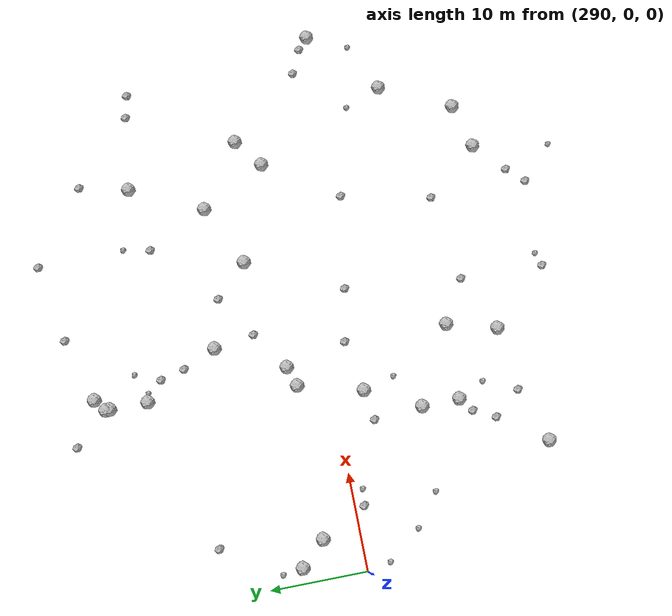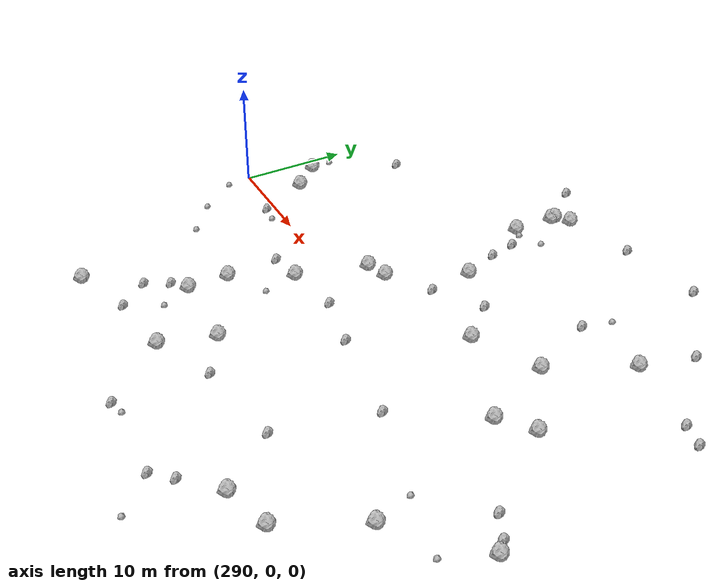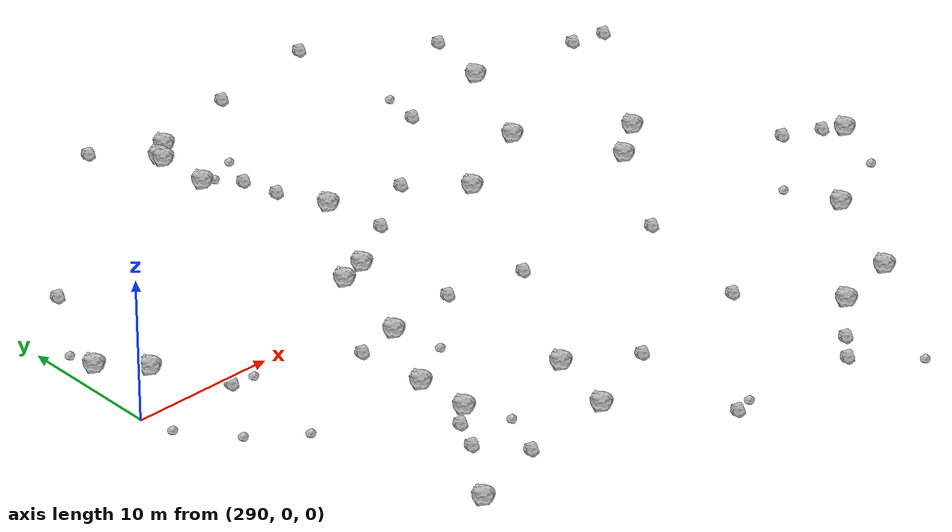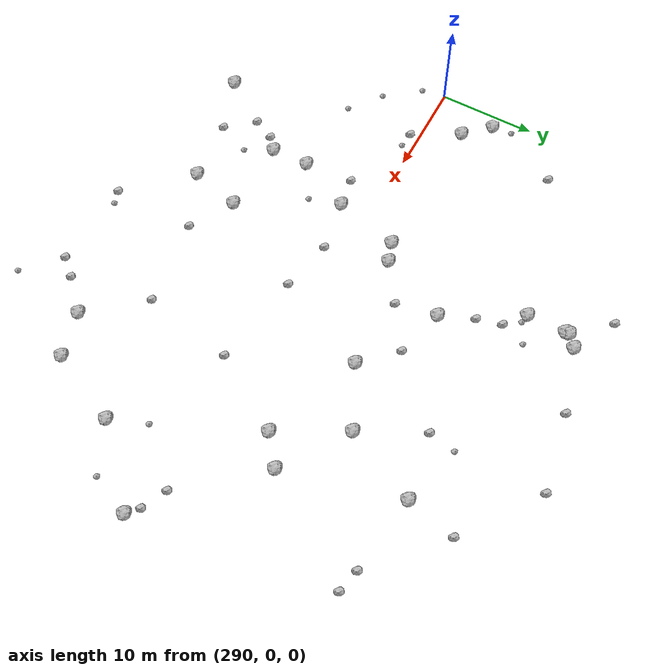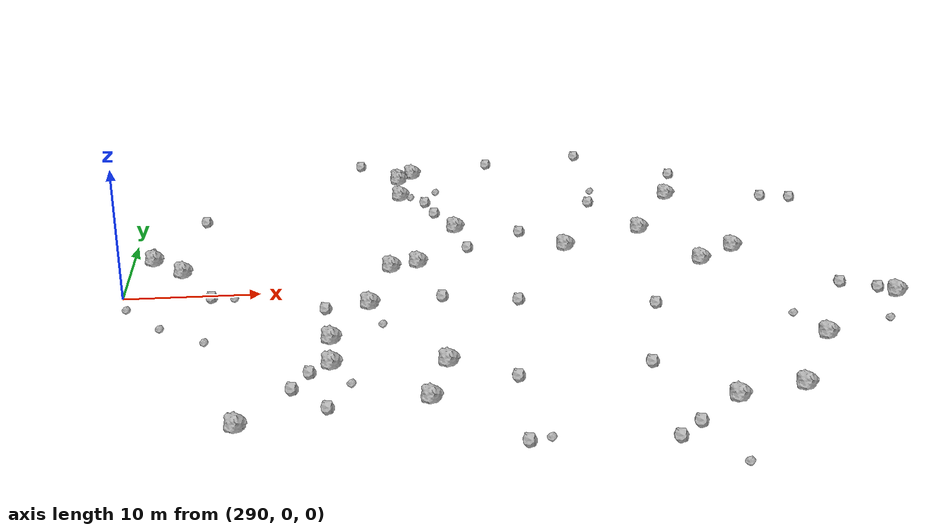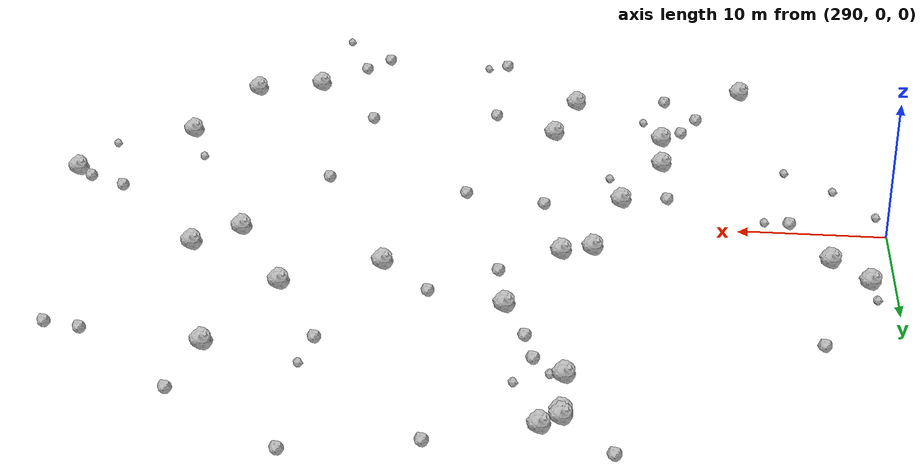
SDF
<sdf version="1.6">
 <world name="default">
  <include><uri>model://sun</uri></include>
  <model name="rock1_8_3">
   <include><uri>model://rock1</uri><pose>308.00813359753374 -3.187387761317037 0.5 0 0 0</pose></include>
  </model>
  <model name="rock1_8_4">
   <include><uri>model://rock1</uri><pose>310.99982989097117 22.75849761466675 0.5 0 0 0</pose></include>
  </model>
  <model name="rock1_8_5">
   <include><uri>model://rock1</uri><pose>313.11790677831294 -12.95435799102571 0.5 0 0 0</pose></include>
  </model>
  <model name="rock1_8_6">
   <include><uri>model://rock1</uri><pose>339.7107557767021 -11.238881592399537 0.5 0 0 0</pose></include>
  </model>
  <model name="rock1_8_7">
   <include><uri>model://rock1</uri><pose>333.65522824359823 2.6999657780466038 0.5 0 0 0</pose></include>
  </model>
  <model name="rock1_8_8">
   <include><uri>model://rock1</uri><pose>299.38721224843886 -20.72889963945307 0.5 0 0 0</pose></include>
  </model>
  <model name="rock1_8_9">
   <include><uri>model://rock1</uri><pose>336.1331582308517 -18.580958607515917 0.5 0 0 0</pose></include>
  </model>
  <model name="rock1_8_10">
   <include><uri>model://rock1</uri><pose>311.84504835807536 4.140270520032679 0.5 0 0 0</pose></include>
  </model>
  <model name="rock1_8_11">
   <include><uri>model://rock1</uri><pose>309.7651905170427 3.4473063271507414 0.5 0 0 0</pose></include>
  </model>
  <model name="rock1_8_12">
   <include><uri>model://rock1</uri><pose>333.60327432733936 17.028898842880068 0.5 0 0 0</pose></include>
  </model>
  <model name="rock1_8_13">
   <include><uri>model://rock1</uri><pose>305.27915386188886 -12.624356242275088 0.5 0 0 0</pose></include>
  </model>
  <model name="rock1_8_14">
   <include><uri>model://rock1</uri><pose>311.00284128467575 18.802592759755797 0.5 0 0 0</pose></include>
  </model>
  <model name="rock1_8_15">
   <include><uri>model://rock1</uri><pose>291.6363394959519 6.360772544247567 0.5 0 0 0</pose></include>
  </model>
  <model name="rock1_8_16">
   <include><uri>model://rock1</uri><pose>323.5577789304534 6.460767236000386 0.5 0 0 0</pose></include>
  </model>
  <model name="rock1_8_17">
   <include><uri>model://rock1</uri><pose>305.2357780867176 -8.727962177162855 0.5 0 0 0</pose></include>
  </model>
  <model name="rock1_8_18">
   <include><uri>model://rock1</uri><pose>294.04364252529837 3.8359038840757265 0.5 0 0 0</pose></include>
  </model>
  <model name="rock1_8_19">
   <include><uri>model://rock1</uri><pose>346.77463513639077 -4.742301179356172 0.5 0 0 0</pose></include>
  </model>
  <model name="rock1_8_20">
   <include><uri>model://rock1</uri><pose>311.6987053895414 -18.070250590364015 0.5 0 0 0</pose></include>
  </model>
  <model name="rock1_8_21">
   <include><uri>model://rock1</uri><pose>329.9848285182422 9.519066900218206 0.5 0 0 0</pose></include>
  </model>
  <model name="rock1_8_22">
   <include><uri>model://rock1</uri><pose>312.23106405604335 24.158770901594913 0.5 0 0 0</pose></include>
  </model>
  <model name="rock1_8_23">
   <include><uri>model://rock1</uri><pose>310.9953072815937 23.169473670473046 0.5 0 0 0</pose></include>
  </model>
  <model name="rock1_8_24">
   <include><uri>model://rock1</uri><pose>315.16272701499054 11.10916441495229 0.5 0 0 0</pose></include>
  </model>
  <model name="rock1_8_25">
   <include><uri>model://rock1</uri><pose>331.42249340438383 -19.787996333045612 0.5 0 0 0</pose></include>
  </model>
  <model name="rock1_8_26">
   <include><uri>model://rock1</uri><pose>336.6406897955026 5.010147929801391 0.5 0 0 0</pose></include>
  </model>
  <model name="rock2_8_0">
   <include><uri>model://rock2</uri><pose>326.6933615772589 -14.290084250817474 0.3 0 0 0</pose></include>
  </model>
  <model name="rock2_8_1">
   <include><uri>model://rock2</uri><pose>303.8238686739279 -13.75474630104273 0.3 0 0 0</pose></include>
  </model>
  <model name="rock2_8_2">
   <include><uri>model://rock2</uri><pose>341.554497611452 16.03546242926815 0.3 0 0 0</pose></include>
  </model>
  <model name="rock2_8_3">
   <include><uri>model://rock2</uri><pose>318.8886351278332 26.215455038683785 0.3 0 0 0</pose></include>
  </model>
  <model name="rock2_8_4">
   <include><uri>model://rock2</uri><pose>320.2010998241955 9.806728145053278 0.3 0 0 0</pose></include>
  </model>
  <model name="rock2_8_5">
   <include><uri>model://rock2</uri><pose>312.98124757024516 17.11766081176615 0.3 0 0 0</pose></include>
  </model>
  <model name="rock2_8_6">
   <include><uri>model://rock2</uri><pose>343.9591847960104 15.504281311434625 0.3 0 0 0</pose></include>
  </model>
  <model name="rock2_8_7">
   <include><uri>model://rock2</uri><pose>326.59466085007614 -24.486563865933064 0.3 0 0 0</pose></include>
  </model>
  <model name="rock2_8_8">
   <include><uri>model://rock2</uri><pose>296.5099697790267 -0.892818791794209 0.3 0 0 0</pose></include>
  </model>
  <model name="rock2_8_9">
   <include><uri>model://rock2</uri><pose>305.0471478879534 -18.78060602918515 0.3 0 0 0</pose></include>
  </model>
  <model name="rock2_8_10">
   <include><uri>model://rock2</uri><pose>328.66540918443957 -4.925869576731877 0.3 0 0 0</pose></include>
  </model>
  <model name="rock2_8_11">
   <include><uri>model://rock2</uri><pose>327.09577056177505 27.72830708052026 0.3 0 0 0</pose></include>
  </model>
  <model name="rock2_8_12">
   <include><uri>model://rock2</uri><pose>304.81234261508746 -3.6686798854948606 0.3 0 0 0</pose></include>
  </model>
  <model name="rock2_8_13">
   <include><uri>model://rock2</uri><pose>334.7891628145289 22.166719012722197 0.3 0 0 0</pose></include>
  </model>
  <model name="rock2_8_14">
   <include><uri>model://rock2</uri><pose>317.31220768445684 -24.15696990575973 0.3 0 0 0</pose></include>
  </model>
  <model name="rock2_8_15">
   <include><uri>model://rock2</uri><pose>343.04482300935484 -2.516322472158137 0.3 0 0 0</pose></include>
  </model>
  <model name="rock2_8_16">
   <include><uri>model://rock2</uri><pose>313.302010527214 -2.2654049434506938 0.3 0 0 0</pose></include>
  </model>
  <model name="rock2_8_17">
   <include><uri>model://rock2</uri><pose>328.2328490144106 -22.73327477602649 0.3 0 0 0</pose></include>
  </model>
  <model name="rock2_8_18">
   <include><uri>model://rock2</uri><pose>345.59418313242844 -3.7023276834032686 0.3 0 0 0</pose></include>
  </model>
  <model name="rock2_8_19">
   <include><uri>model://rock2</uri><pose>302.71694897593375 -15.989494809511196 0.3 0 0 0</pose></include>
  </model>
  <model name="rock2_8_20">
   <include><uri>model://rock2</uri><pose>313.632290737569 14.588548505994481 0.3 0 0 0</pose></include>
  </model>
  <model name="rock2_8_21">
   <include><uri>model://rock2</uri><pose>295.0482275227442 14.251782130942573 0.3 0 0 0</pose></include>
  </model>
  <model name="rock2_8_22">
   <include><uri>model://rock2</uri><pose>307.7510488180632 26.669788782962186 0.3 0 0 0</pose></include>
  </model>
  <model name="rock2_8_23">
   <include><uri>model://rock2</uri><pose>315.819985818685 6.892594987121804 0.3 0 0 0</pose></include>
  </model>
  <model name="rock2_8_24">
   <include><uri>model://rock2</uri><pose>317.5460388624866 -15.517407049988485 0.3 0 0 0</pose></include>
  </model>
  <model name="rock2_8_25">
   <include><uri>model://rock2</uri><pose>326.6934651446831 15.887089031512438 0.3 0 0 0</pose></include>
  </model>
  <model name="rock2_8_26">
   <include><uri>model://rock2</uri><pose>318.79963293266223 -3.366699982409177 0.3 0 0 0</pose></include>
  </model>
  <model name="rock3_8_0">
   <include><uri>model://rock3</uri><pose>318.71597545438254 -23.784340960161558 0.2 0 0 0</pose></include>
  </model>
  <model name="rock3_8_1">
   <include><uri>model://rock3</uri><pose>293.2199705823803 -5.858501532710303 0.2 0 0 0</pose></include>
  </model>
  <model name="rock3_8_2">
   <include><uri>model://rock3</uri><pose>290.5196433484738 -2.4090218779588994 0.2 0 0 0</pose></include>
  </model>
  <model name="rock3_8_3">
   <include><uri>model://rock3</uri><pose>327.2429043772638 18.667489710245526 0.2 0 0 0</pose></include>
  </model>
  <model name="rock3_8_4">
   <include><uri>model://rock3</uri><pose>338.1665600093012 -7.499030786558382 0.2 0 0 0</pose></include>
  </model>
  <model name="rock3_8_5">
   <include><uri>model://rock3</uri><pose>314.0013523576144 19.691224439585902 0.2 0 0 0</pose></include>
  </model>
  <model name="rock3_8_6">
   <include><uri>model://rock3</uri><pose>291.29229612508794 8.401353996937843 0.2 0 0 0</pose></include>
  </model>
  <model name="rock3_8_7">
   <include><uri>model://rock3</uri><pose>330.0859557444963 -27.83536045060473 0.2 0 0 0</pose></include>
  </model>
  <model name="rock3_8_8">
   <include><uri>model://rock3</uri><pose>308.83010903865926 -6.5047435479294045 0.2 0 0 0</pose></include>
  </model>
  <model name="rock3_8_9">
   <include><uri>model://rock3</uri><pose>296.4927938035269 -8.344774068228109 0.2 0 0 0</pose></include>
  </model>
  <model name="rock3_8_10">
   <include><uri>model://rock3</uri><pose>298.1580172687569 -1.1115227225866455 0.2 0 0 0</pose></include>
  </model>
  <model name="rock3_8_11">
   <include><uri>model://rock3</uri><pose>306.5605461806168 -15.447025533643703 0.2 0 0 0</pose></include>
  </model>
  <model name="rock3_8_12">
   <include><uri>model://rock3</uri><pose>311.8198729481507 18.609747103021228 0.2 0 0 0</pose></include>
  </model>
  <model name="rock3_8_13">
   <include><uri>model://rock3</uri><pose>344.8639355272274 -8.937537140950468 0.2 0 0 0</pose></include>
  </model>
 </world>
</sdf>
